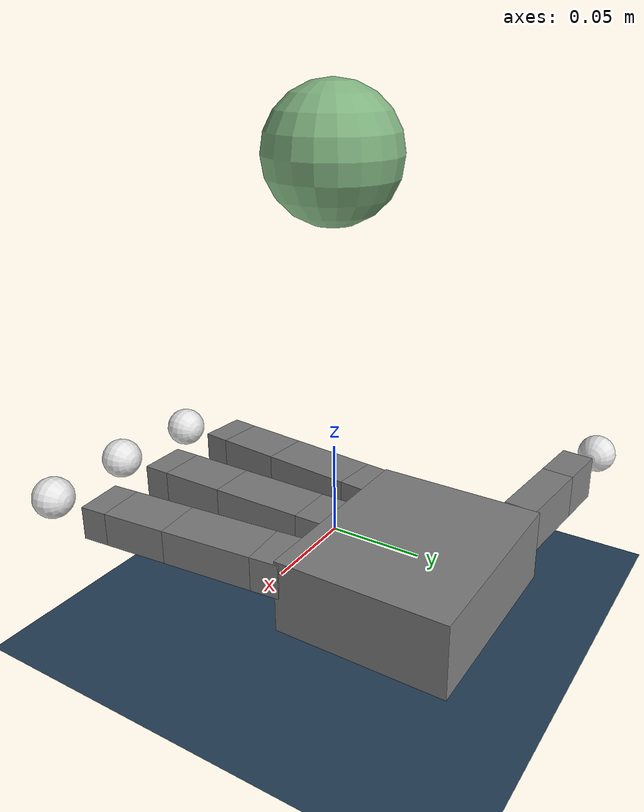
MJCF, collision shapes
<mujoco model="right_allegro_hand scene">
  <include file="right_hand.xml"/>

  <option timestep="0.002" integrator="Euler" cone="elliptic" impratio="10"/>

  <visual>
    <rgba haze="0.15 0.25 0.35 1"/>
    <quality shadowsize="8192"/>
    <global azimuth="130" elevation="-40"/>
  </visual>

  <asset>
    <texture type="skybox" builtin="gradient" rgb1="0.3 0.5 0.7" rgb2="0 0 0" width="512" height="3072"/>
    <texture type="2d" name="groundplane" builtin="checker" mark="edge" rgb1="0.2 0.3 0.4" rgb2="0.1 0.2 0.3"
      markrgb="0.8 0.8 0.8" width="300" height="300"/>
    <material name="groundplane" texture="groundplane" texuniform="true" texrepeat="5 5" reflectance="0.2"/>
  </asset>

  <worldbody>
    <light pos="0 0 1"/>
    <light pos="0.3 0 1.5" dir="0 0 -1" directional="true"/>
    <geom name="floor" pos="0 0 -0.1" size="0 0 0.05" type="plane" material="groundplane"/>
    <body name="object" pos="0 0 0.2">
      <freejoint/>
      <inertial pos="0 0 0" mass="0.05" diaginertia="0.0001 0.0001 0.0001"/>
      <geom type="sphere" size="0.034" rgba="0.5 0.7 0.5 1" condim="6" priority="1" friction="0.7 0.002 0.002" material="groundplane"/>
    </body>
  </worldbody>

  <keyframe>
    <key name="home" qpos='0.0143862 1.42557 0.145901 0.172863 1.182 1.08728 0.793195 0.00212516 -0.00140372 1.1927 0.0642763 0.183578 0.0750524 1.44143 0.339084 0.235215 -0.00842207 -0.0125362 0.168559 0.128285 -0.0697318 0.46551 0.872915'/>
  </keyframe>
</mujoco>

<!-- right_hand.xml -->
<mujoco model="allegro_right">
  <compiler angle="radian" meshdir="meshes/allegro" autolimits="true" />

  <default>
    <default class="allegro_right">
      <joint axis="0 1 0" damping=".1" />
      <position kp="3.0" />
      <geom density="800" />

      <default
        class="visual">
        <geom type="mesh" contype="0" conaffinity="0" group="2" material="black" mass="0" />
        <default class="palm_visual">
          <geom mesh="base_link" />
        </default>
        <default class="base_visual">
          <geom mesh="link_0.0" />
        </default>
        <default class="proximal_visual">
          <geom mesh="link_1.0" />
        </default>
        <default class="medial_visual">
          <geom mesh="link_2.0" />
        </default>
        <default class="distal_visual">
          <geom mesh="link_3.0" />
        </default>
        <default class="fingertip_visual">
          <geom pos="0 0 0.0267" material="white" mesh="link_3.0_tip" />
        </default>
        <default class="thumbtip_visual">
          <geom pos="0 0 0.0423" material="white" mesh="link_15.0_tip" />
        </default>
      </default>

      <default
        class="collision">
        <geom group="2" type="box" mass="0" />
        <default class="palm_collision">
          <geom size="0.0204 0.0565 0.0475" pos="-0.0093 0 -0.0475" />
        </default>
        <default class="base_collision">
          <geom size="0.0098 0.01375 0.0082" pos="0 0 0.0082" />
          <default class="thumb_base_collision">
            <geom size="0.0179 0.017 0.02275" pos="-0.0179 0.009 0.0145" />
          </default>
        </default>
        <default class="proximal_collision">
          <geom size="0.0098 0.01375 0.027" pos="0 0 0.027" />
          <default class="thumb_proximal_collision">
            <geom size="0.0098 0.01375 0.00885" pos="0 0 0.00885" />
          </default>
        </default>
        <default class="medial_collision">
          <geom size="0.0098 0.01375 0.0192" pos="0 0 0.0192" />
          <default class="thumb_medial_collision">
            <geom size="0.0098 0.01375 0.0257" pos="0 0 0.0257" />
          </default>
        </default>
        <default class="distal_collision">
          <geom size="0.0098 0.01375 0.008" pos="0 0 0.008" />
          <default class="thumb_distal_collision">
            <geom size="0.0098 0.01375 0.0157" pos="0 0 0.0157" />
          </default>
        </default>
        <default class="fingertip_collision">
          <geom type="sphere" size="0.01235" pos="0 0 0.0515" rgba="0.9 0.9 0.9 1" />
          <default class="thumbtip_collision">
            <geom type="sphere" size="0.01235" pos="0 0 0.0671" rgba="0.9 0.9 0.9 1" />
          </default>
        </default>
      </default>

      <default
        class="base">
        <joint axis="0 0 1" range="-0.47 0.47" actuatorfrcrange="-0.35 0.35" />
        <position ctrlrange="-0.47 0.47" />
      </default>
      <default class="proximal">
        <joint range="-0.196 1.61" actuatorfrcrange="-0.35 0.35" />
        <position ctrlrange="-0.196 1.61" />
      </default>
      <default class="medial">
        <joint range="-0.174 1.709" actuatorfrcrange="-0.35 0.35" />
        <position ctrlrange="-0.174 1.709" />
      </default>
      <default class="distal">
        <joint range="-0.227 1.618" actuatorfrcrange="-0.35 0.35" />
        <position ctrlrange="-0.227 1.618" />
      </default>
      <default class="thumb_base">
        <joint axis="-1 0 0" range="0.263 1.396" actuatorfrcrange="-0.35 0.35" />
        <position ctrlrange="0.263 1.396" />
      </default>
      <default class="thumb_proximal">
        <joint axis="0 0 1" range="-0.105 1.163" actuatorfrcrange="-0.35 0.35" />
        <position ctrlrange="-0.105 1.163" />
      </default>
      <default class="thumb_medial">
        <joint range="-0.189 1.644" actuatorfrcrange="-0.35 0.35" />
        <position ctrlrange="-0.189 1.644" />
      </default>
      <default class="thumb_distal">
        <joint range="-0.162 1.719" actuatorfrcrange="-0.35 0.35" />
        <position ctrlrange="-0.162 1.719" />
      </default>
    </default>
  </default>

  <asset>
    <material name="black" rgba="0.2 0.2 0.2 1" />
    <material name="white" rgba="0.9 0.9 0.9 1" />
    <mesh file="base_link.obj" />
    <mesh file="link_0.0.obj" />
    <mesh
      file="link_1.0.obj" />
    <mesh file="link_2.0.obj" />
    <mesh file="link_3.0.obj" />
    <mesh
      file="link_3.0_tip.obj" />
    <mesh file="link_12.0_right.obj" />
    <mesh file="link_13.0.obj" />
    <mesh
      file="link_14.0.obj" />
    <mesh file="link_15.0.obj" />
    <mesh file="link_15.0_tip.obj" />
  </asset>

  <worldbody>
    <body name="palm" quat="1 1 -1 1" childclass="allegro_right">
      <inertial mass="0.4154" pos="0 0 0.0475" diaginertia="1e-4 1e-4 1e-4"/>
      <geom class="palm_visual" mesh="base_link" />
      <geom class="palm_collision" />
      <!-- First finger -->
      <body name="ff_base" pos="0 0.0435 -0.001542" quat="0.999048 -0.0436194 0 0">
        <inertial mass="0.0119" pos="0 0 0"
          diaginertia="1.01666658333e-06 6.47677333333e-07 1.01666658333e-06" />
        <joint name="ffj0" class="base" />
        <geom class="base_visual" />
        <geom class="base_collision" />
        <body name="ff_proximal" pos="0 0 0.0164">
          <inertial pos="0 0 0" quat="0.702596 0.559386 -0.178354 0.402039" mass="0.065"
            diaginertia="6.12799e-05 6.12799e-05 6.12799e-05" />
          <joint name="ffj1" class="proximal" />
          <geom class="proximal_visual" />
          <geom class="proximal_collision" />
          <body name="ff_medial" pos="0 0 0.054">
            <inertial pos="0 0 0" quat="0.719796 0.528175 -0.157463 0.422055" mass="0.0355"
              diaginertia="2.20969e-05 2.20969e-05 2.20969e-05" />
            <joint name="ffj2" class="medial" />
            <geom class="medial_visual" />
            <geom class="medial_collision" />
            <body name="ff_distal" pos="0 0 0.0384">
              <inertial pos="0 0 0.00935455" mass="0.0264"
                diaginertia="6.63872e-06 6.63872e-06 5.3186e-06" />
              <joint name="ffj3" class="distal" />
              <geom class="distal_visual" />
              <geom class="distal_collision" />
              <body name="ff_tip">
                <geom class="fingertip_collision" />
              </body>
            </body>
          </body>
        </body>
      </body>
      <!-- Thumb -->
      <body name="th_base" pos="-0.0182 0.019333 -0.045987"
        quat="0.477714 -0.521334 -0.521334 -0.477714">
        <inertial pos="0 0 0" quat="0.692635 0.569362 -0.07143 0.437013" mass="0.0176"
          diaginertia="1.73852e-05 1.73852e-05 1.73852e-05" />
        <joint name="thj0" class="thumb_base" />
        <geom class="visual" mesh="link_12.0_right" />
        <geom class="thumb_base_collision" />
        <body name="th_proximal" pos="-0.027 0.005 0.0399">
          <inertial pos="0 0 0" quat="-0.0269589 0.880876 0.334036 0.334292" mass="0.0119"
            diaginertia="4.33621e-06 4.33621e-06 4.33621e-06" />
          <joint name="thj1" class="thumb_proximal" />
          <geom class="visual" mesh="link_13.0" />
          <geom class="thumb_proximal_collision" />
          <body name="th_medial" pos="0 0 0.0177">
            <inertial pos="0 0 0" quat="0.70472 0.55555 -0.174905 0.405146" mass="0.038"
              diaginertia="3.35111e-05 3.35111e-05 3.35111e-05" />
            <joint name="thj2" class="thumb_medial" />
            <geom class="visual" mesh="link_14.0" />
            <geom class="thumb_medial_collision" />
            <body name="th_distal" pos="0 0 0.0514">
              <inertial pos="0 0 0.0091554" mass="0.0556"
                diaginertia="3.85961e-05 3.85961e-05 2.78326e-05" />
              <joint name="thj3" class="thumb_distal" />
              <geom class="visual" mesh="link_15.0" />
              <geom class="thumb_distal_collision" />
              <body name="th_tip">
                <geom class="thumbtip_collision" />
              </body>
            </body>
          </body>
        </body>
      </body>
      <!-- Middle finger -->
      <body name="mf_base" pos="0 0 0.0007">
        <inertial pos="0 0 0" quat="0.707107 0.707107 0 0" mass="0.0119"
          diaginertia="1.01667e-06 1.01667e-06 6.47677e-07" />
        <joint name="mfj0" class="base" />
        <geom class="base_visual" />
        <geom class="base_collision" />
        <body name="mf_proximal" pos="0 0 0.0164">
          <inertial pos="0 0 0" quat="0.702596 0.559386 -0.178354 0.402039" mass="0.065"
            diaginertia="6.12799e-05 6.12799e-05 6.12799e-05" />
          <joint name="mfj1" class="proximal" />
          <geom class="proximal_visual" />
          <geom class="proximal_collision" />
          <body name="mf_medial" pos="0 0 0.054">
            <inertial pos="0 0 0" quat="0.719796 0.528175 -0.157463 0.422055" mass="0.0355"
              diaginertia="2.20969e-05 2.20969e-05 2.20969e-05" />
            <joint name="mfj2" class="medial" />
            <geom class="medial_visual" />
            <geom class="medial_collision" />
            <body name="mf_distal" pos="0 0 0.0384">
              <inertial pos="0 0 0.00935455" mass="0.0264"
                diaginertia="6.63872e-06 6.63872e-06 5.3186e-06" />
              <joint name="mfj3" class="distal" />
              <geom class="distal_visual" />
              <geom class="distal_collision" />
              <body name="mf_tip">
                <geom class="fingertip_collision" />
              </body>
            </body>
          </body>
        </body>
      </body>
      <!-- Ring finger -->
      <body name="rf_base" pos="0 -0.0435 -0.001542" quat="0.999048 0.0436194 0 0">
        <inertial pos="0 0 0" quat="0.707107 0.707107 0 0" mass="0.0119"
          diaginertia="1.01667e-06 1.01667e-06 6.47677e-07" />
        <joint name="rfj0" class="base" />
        <geom class="base_visual" />
        <geom class="base_collision" />
        <body name="rf_proximal" pos="0 0 0.0164">
          <inertial pos="0 0 0" quat="0.702596 0.559386 -0.178354 0.402039" mass="0.065"
            diaginertia="6.12799e-05 6.12799e-05 6.12799e-05" />
          <joint name="rfj1" class="proximal" />
          <geom class="proximal_visual" />
          <geom class="proximal_collision" />
          <body name="rf_medial" pos="0 0 0.054">
            <inertial pos="0 0 0" quat="0.719796 0.528175 -0.157463 0.422055" mass="0.0355"
              diaginertia="2.20969e-05 2.20969e-05 2.20969e-05" />
            <joint name="rfj2" class="medial" />
            <geom class="medial_visual" />
            <geom class="medial_collision" />
            <body name="rf_distal" pos="0 0 0.0384">
              <inertial pos="0 0 0.00935455" mass="0.0264"
                diaginertia="6.63872e-06 6.63872e-06 5.3186e-06" />
              <joint name="rfj3" class="distal" />
              <geom class="distal_visual" />
              <geom class="distal_collision" />
              <body name="rf_tip">
                <geom class="fingertip_collision" />
              </body>
            </body>
          </body>
        </body>
      </body>
    </body>

  </worldbody>

  <contact>
    <exclude body1="palm" body2="ff_base" />
    <exclude body1="palm" body2="mf_base" />
    <exclude body1="palm" body2="rf_base" />
    <exclude body1="palm" body2="th_base" />
    <exclude body1="palm" body2="th_proximal" />
  </contact>

  <actuator>
    <position name="ffa0" joint="ffj0" class="base" />
    <position name="ffa1" joint="ffj1" class="proximal" />
    <position name="ffa2" joint="ffj2" class="medial" />
    <position name="ffa3" joint="ffj3" class="distal" />
    <position name="tha0" joint="thj0" class="thumb_base" />
    <position name="tha1" joint="thj1" class="thumb_proximal" />
    <position name="tha2" joint="thj2" class="thumb_medial" />
    <position name="tha3" joint="thj3" class="thumb_distal" />
    <position name="mfa0" joint="mfj0" class="base" />
    <position name="mfa1" joint="mfj1" class="proximal" />
    <position name="mfa2" joint="mfj2" class="medial" />
    <position name="mfa3" joint="mfj3" class="distal" />
    <position name="rfa0" joint="rfj0" class="base" />
    <position name="rfa1" joint="rfj1" class="proximal" />
    <position name="rfa2" joint="rfj2" class="medial" />
    <position name="rfa3" joint="rfj3" class="distal" />
  </actuator>
</mujoco>
